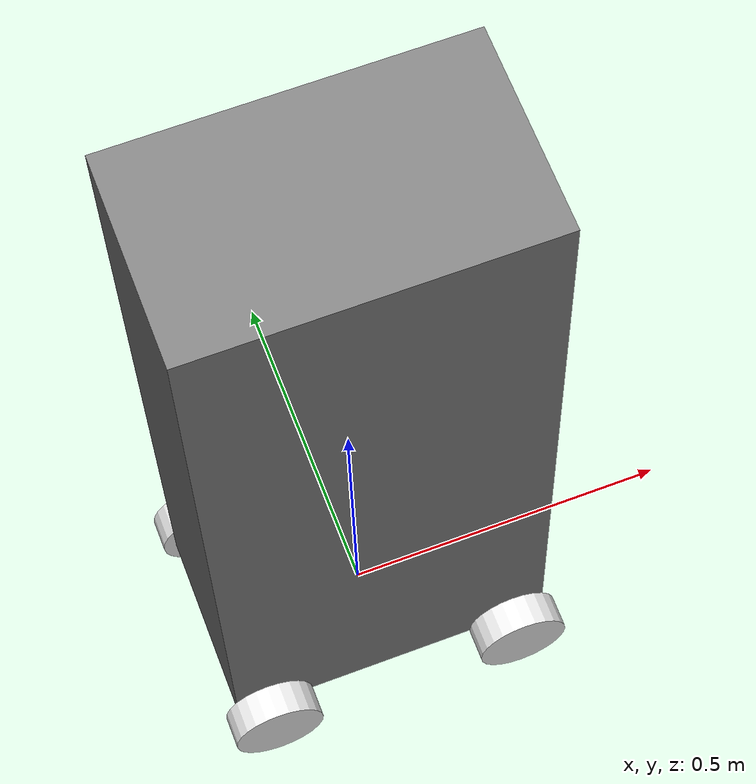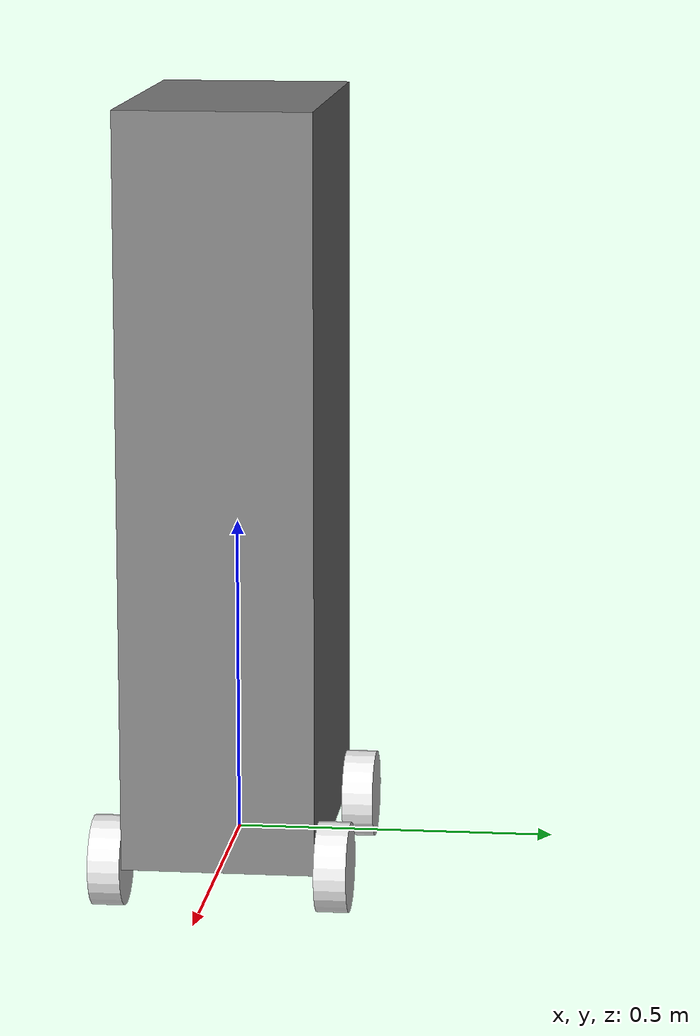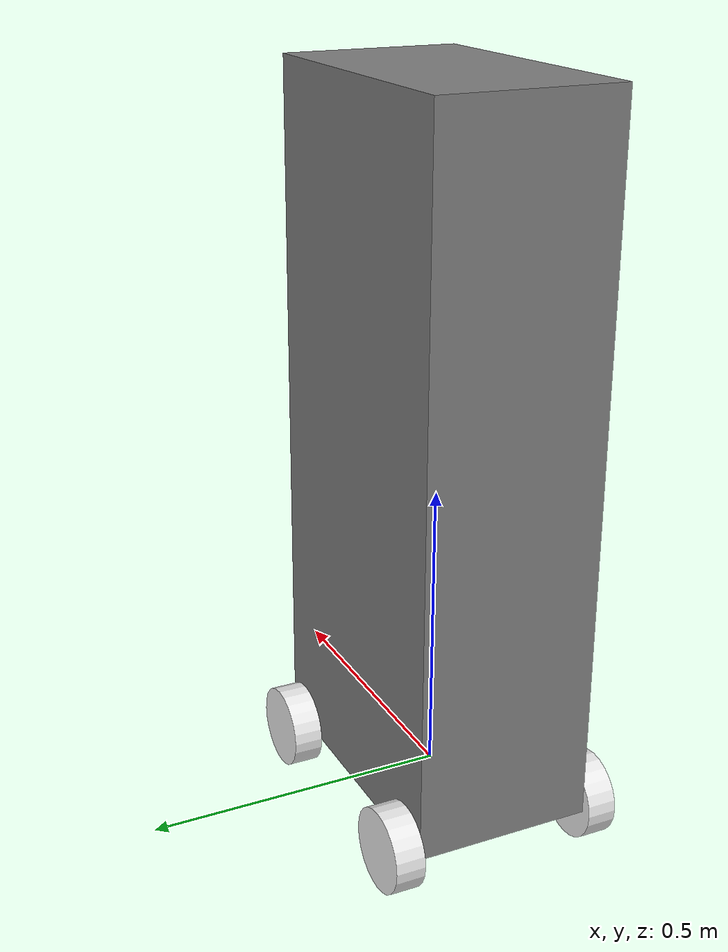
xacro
<?xml version="1.0"?>
<robot xmlns:xacro="http://www.ros.org/wiki/xacro"  name="robot">
    <!-- Main URDF file for Differential Drive Robot -->

    <!-- Include general xacro files -->
    <xacro:include filename="common.xacro"/>

    <material name="gray">
        <color rgba="0.5 0.5 0.5 1.0"/>
    </material>

    <!-- Robot Variables -->
    <xacro:property name="chassis_length" value="0.5"/>
    <xacro:property name="chassis_width" value="0.3"/>
    <xacro:property name="chassis_height" value="1.17"/>
    <xacro:property name="chassis_mass" value="22.2"/>

    <xacro:property name="wheel_radius" value="0.07"/>
    <xacro:property name="wheel_thickness" value="0.05"/>
    <xacro:property name="wheel_mass" value="0.2"/>
    <xacro:property name="wheel_offset_x" value="0.2"/>
    <xacro:property name="wheel_offset_y" value="${chassis_width/2 + wheel_thickness/2}"/>
    <xacro:property name="wheel_offset_z" value="0.0"/>

    <!-- Base Link -->
    <link name="base_link"></link>

    <!-- Base Footprint -->
    <joint name="base_footprint_joint" type="fixed">
        <parent link="base_link"/>
        <child link="base_footprint"/>
        <origin xyz="0 0 0" rpy="0 0 0"/>
    </joint>
    <link name="base_footprint"></link>

    <!-- Chassis -->
    <joint name="chassis_joint" type="fixed">
        <parent link="base_link"/>
        <child link="chassis_link"/>
        <origin xyz="0 0 0"/>
    </joint>
    <link name="chassis_link">
        <visual>
            <origin xyz="0 0 ${chassis_height/2}"/>
            <geometry>
                <box size="${chassis_length} ${chassis_width} ${chassis_height}"/>
            </geometry>
            <material name="gray"/>
        </visual>
        <collision>
            <origin xyz="0 0 ${chassis_height/2}"/>
            <geometry>
                <box size="${chassis_length} ${chassis_width} ${chassis_height}"/>
            </geometry>
        </collision>
        <xacro:inertial_box mass="0.5" x="${chassis_length}" y="${chassis_width}" z="${chassis_height}">
            <origin xyz="0 0 ${chassis_height/2}" rpy="0 0 0"/>
        </xacro:inertial_box>
    </link>

    <!-- Front Left Wheel -->
    <joint name="front_left_wheel_joint" type="continuous">
        <parent link="base_link"/>
        <child link="front_left_wheel"/>
        <origin xyz="${wheel_offset_x} ${wheel_offset_y} 0" rpy="-${pi/2} 0 0" />
        <axis xyz="0 0 1"/>
    </joint>
    <transmission name="front_left_wheel_trans">
        <type>transmission_interface/SimpleTransmission</type>
        <joint name="front_left_wheel_joint">
            <hardwareInterface>hardware_interface/VelocityJointInterface</hardwareInterface>
        </joint>
        <actuator name="front_left_motor">
            <hardwareInterface>hardware_interface/VelocityJointInterface</hardwareInterface>
        </actuator>
    </transmission>
    <link name="front_left_wheel">
        <visual>
            <geometry>
                <cylinder radius="${wheel_radius}" length="${wheel_thickness}"/>
            </geometry>
            <material name="white"/>
        </visual>
        <collision>
            <geometry>
                <sphere radius="${wheel_radius}"/>
            </geometry>
        </collision>
        <xacro:inertial_cylinder mass="${wheel_mass}" length="${wheel_thickness}" radius="${wheel_radius}">
            <origin xyz="0 0 0" rpy="0 0 0"/>
        </xacro:inertial_cylinder>
    </link>

    <!-- Front Right Wheel -->
    <joint name="front_right_wheel_joint" type="continuous">
        <parent link="base_link"/>
        <child link="front_right_wheel"/>
        <origin xyz="${wheel_offset_x} ${-wheel_offset_y} 0" rpy="${pi/2} 0 0" />
        <axis xyz="0 0 -1"/>
    </joint>
    <transmission name="front_right_wheel_trans">
        <type>transmission_interface/SimpleTransmission</type>
        <joint name="front_right_wheel_joint">
            <hardwareInterface>hardware_interface/VelocityJointInterface</hardwareInterface>
        </joint>
        <actuator name="front_right_motor">
            <hardwareInterface>hardware_interface/VelocityJointInterface</hardwareInterface>
        </actuator>
    </transmission>
    <link name="front_right_wheel">
        <visual>
            <geometry>
                <cylinder radius="${wheel_radius}" length="${wheel_thickness}"/>
            </geometry>
            <material name="white"/>
        </visual>
        <collision>
            <geometry>
                <sphere radius="${wheel_radius}"/>
            </geometry>
        </collision>
        <xacro:inertial_cylinder mass="${wheel_mass}" length="${wheel_thickness}" radius="${wheel_radius}">
            <origin xyz="0 0 0" rpy="0 0 0"/>
        </xacro:inertial_cylinder>
    </link>

    <!-- Rear Left Wheel -->
    <joint name="rear_left_wheel_joint" type="continuous">
        <parent link="base_link"/>
        <child link="rear_left_wheel"/>
        <origin xyz="${-wheel_offset_x} ${wheel_offset_y} 0" rpy="-${pi/2} 0 0" />
        <axis xyz="0 0 1"/>
    </joint>
    <transmission name="rear_left_wheel_trans">
        <type>transmission_interface/SimpleTransmission</type>
        <joint name="rear_left_wheel_joint">
            <hardwareInterface>hardware_interface/VelocityJointInterface</hardwareInterface>
        </joint>
        <actuator name="rear_left_motor">
            <hardwareInterface>hardware_interface/VelocityJointInterface</hardwareInterface>
        </actuator>
    </transmission>
    <link name="rear_left_wheel">
        <visual>
            <geometry>
                <cylinder radius="${wheel_radius}" length="${wheel_thickness}"/>
            </geometry>
            <material name="white"/>
        </visual>
        <collision>
            <geometry>
                <sphere radius="${wheel_radius}"/>
            </geometry>
        </collision>
        <xacro:inertial_cylinder mass="${wheel_mass}" length="${wheel_thickness}" radius="${wheel_radius}">
            <origin xyz="0 0 0" rpy="0 0 0"/>
        </xacro:inertial_cylinder>
    </link>

    <!-- Rear Right Wheel -->
    <joint name="rear_right_wheel_joint" type="continuous">
        <parent link="base_link"/>
        <child link="rear_right_wheel"/>
        <origin xyz="${-wheel_offset_x} ${-wheel_offset_y} 0" rpy="${pi/2} 0 0" />
        <axis xyz="0 0 -1"/>
    </joint>
    <transmission name="rear_right_wheel_trans">
        <type>transmission_interface/SimpleTransmission</type>
        <joint name="rear_right_wheel_joint">
            <hardwareInterface>hardware_interface/VelocityJointInterface</hardwareInterface>
        </joint>
        <actuator name="rear_right_motor">
            <hardwareInterface>hardware_interface/VelocityJointInterface</hardwareInterface>
        </actuator>
    </transmission>
    <link name="rear_right_wheel">
        <visual>
            <geometry>
                <cylinder radius="${wheel_radius}" length="${wheel_thickness}"/>
            </geometry>
            <material name="white"/>
        </visual>
        <collision>
            <geometry>
                <sphere radius="${wheel_radius}"/>
            </geometry>
        </collision>
        <xacro:inertial_cylinder mass="${wheel_mass}" length="${wheel_thickness}" radius="${wheel_radius}">
            <origin xyz="0 0 0" rpy="0 0 0"/>
        </xacro:inertial_cylinder>
    </link>

    <!-- Gazebo -->
    <gazebo reference="chassis_link">
        <material>Gazebo/Gray</material>
    </gazebo>

    <gazebo reference="front_left_wheel">
        <material>Gazebo/White</material>
    </gazebo>

    <gazebo reference="front_right_wheel">
        <material>Gazebo/White</material>
    </gazebo>

    <gazebo reference="rear_left_wheel">
        <material>Gazebo/White</material>
    </gazebo>

    <gazebo reference="rear_right_wheel">
        <material>Gazebo/White</material>
    </gazebo>

</robot>
